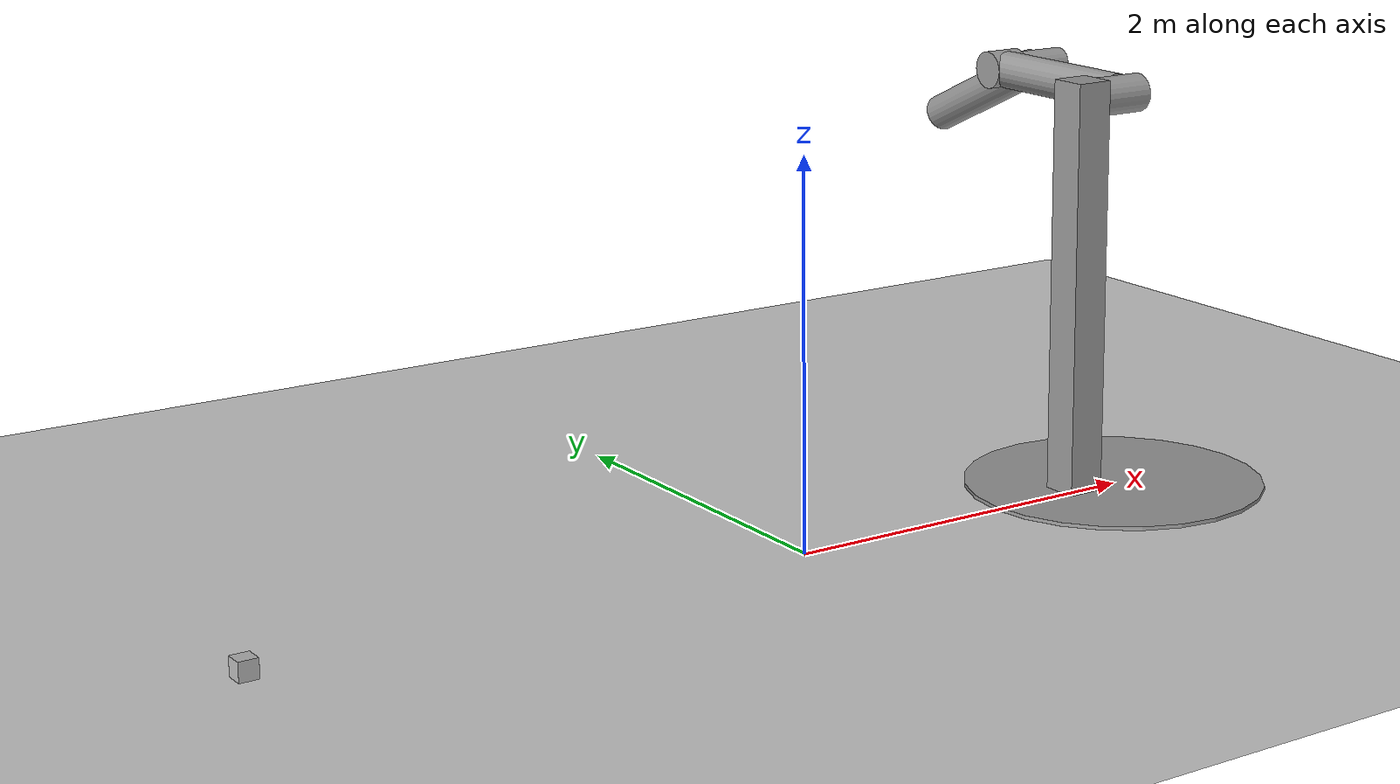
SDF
<sdf version="1.5">
 <world name="default">
  <light name="sun" type="directional">
   <pose>0 0 10 0 -0 0</pose>
   <diffuse>0.8 0.8 0.8 1</diffuse>
   <specular>0.2 0.2 0.2 1</specular>
   <attenuation>
    <range>1000</range>
    <constant>0.9</constant>
    <linear>0.01</linear>
    <quadratic>0.001</quadratic>
   </attenuation>
   <direction>-0.5 0.1 -0.9</direction>
  </light>
  <model name="ground_plane">
   <static>1</static>
   <link name="link">
    <collision name="collision">
     <geometry><plane><normal>0 0 1</normal><size>100 100</size></plane></geometry>
     <surface><friction><ode><mu>100</mu><mu2>50</mu2></ode></friction></surface>
    </collision>
    <visual name="visual">
     <cast_shadows>0</cast_shadows>
     <geometry><plane><normal>0 0 1</normal><size>100 100</size></plane></geometry>
     <material>
      <script><uri>file://media/materials/scripts/gazebo.material</uri><name>Gazebo/Grey</name></script>
     </material>
    </visual>
    <velocity_decay><linear>0</linear><angular>0</angular></velocity_decay>
   </link>
  </model>
  <physics type="ode">
   <max_step_size>0.001</max_step_size>
   <real_time_factor>1</real_time_factor>
   <real_time_update_rate>1000</real_time_update_rate>
   <gravity>0 0 -9.8</gravity>
  </physics>
  <scene><ambient>0.4 0.4 0.4 1</ambient><background>0.7 0.7 0.7 1</background><shadows>1</shadows></scene>
  <spherical_coordinates>
   <surface_model>EARTH_WGS84</surface_model>
   <latitude_deg>0</latitude_deg>
   <longitude_deg>0</longitude_deg>
   <elevation>0</elevation>
   <heading_deg>0</heading_deg>
  </spherical_coordinates>
  <model name="camera">
   <link name="link">
    <pose>0.05 0.05 0.05 0 -0 0</pose>
    <inertial>
     <mass>0.1</mass>
     <inertia><ixx>1</ixx><ixy>0</ixy><ixz>0</ixz><iyy>1</iyy><iyz>0</iyz><izz>1</izz></inertia>
    </inertial>
    <collision name="collision"><geometry><box><size>0.1 0.1 0.1</size></box></geometry></collision>
    <visual name="visual"><geometry><box><size>0.1 0.1 0.1</size></box></geometry></visual>
    <sensor name="camera" type="camera">
     <camera name="__default__">
      <horizontal_fov>1.047</horizontal_fov>
      <image><width>320</width><height>240</height></image>
      <clip><near>0.1</near><far>100</far></clip>
     </camera>
     <always_on>1</always_on>
     <update_rate>30</update_rate>
     <visualize>1</visualize>
    </sensor>
    <velocity_decay><linear>0</linear><angular>0</angular></velocity_decay>
   </link>
   <pose>-3 0 0 0 -0 0</pose>
  </model>
  <model name="double_pendulum_with_base">
   <link name="base">
    <inertial>
     <mass>100</mass>
     <inertia><ixx>1</ixx><ixy>0</ixy><ixz>0</ixz><iyy>1</iyy><iyz>0</iyz><izz>1</izz></inertia>
    </inertial>
    <visual name="vis_plate_on_ground">
     <pose>0 0 0.01 0 -0 0</pose>
     <geometry><cylinder><radius>0.8</radius><length>0.02</length></cylinder></geometry>
     <material>
      <script><uri>file://media/materials/scripts/gazebo.material</uri><name>Gazebo/Grey</name></script>
     </material>
    </visual>
    <visual name="vis_pole">
     <pose>-0.275 0 1.1 0 -0 0</pose>
     <geometry><box><size>0.2 0.2 2.2</size></box></geometry>
     <material>
      <script><uri>file://media/materials/scripts/gazebo.material</uri><name>Gazebo/Grey</name></script>
     </material>
    </visual>
    <collision name="col_plate_on_ground">
     <pose>0 0 0.01 0 -0 0</pose>
     <geometry><cylinder><radius>0.8</radius><length>0.02</length></cylinder></geometry>
    </collision>
    <collision name="col_pole">
     <pose>-0.275 0 1.1 0 -0 0</pose>
     <geometry><box><size>0.2 0.2 2.2</size></box></geometry>
    </collision>
    <velocity_decay><linear>0</linear><angular>0</angular></velocity_decay>
   </link>
   <link name="upper_link">
    <pose>0 0 2.1 -1.5708 0 0</pose>
    <inertial>
     <pose>0 0 0.5 0 -0 0</pose>
     <inertia><ixx>1</ixx><ixy>0</ixy><ixz>0</ixz><iyy>1</iyy><iyz>0</iyz><izz>1</izz></inertia>
     <mass>1</mass>
    </inertial>
    <visual name="vis_upper_joint">
     <pose>-0.05 0 0 3.14159 1.57079 3.14159</pose>
     <geometry><cylinder><radius>0.1</radius><length>0.3</length></cylinder></geometry>
     <material>
      <script><uri>file://media/materials/scripts/gazebo.material</uri><name>Gazebo/Grey</name></script>
     </material>
    </visual>
    <visual name="vis_lower_joint">
     <pose>0 0 1 3.14159 1.57079 3.14159</pose>
     <geometry><cylinder><radius>0.1</radius><length>0.2</length></cylinder></geometry>
     <material>
      <script><uri>file://media/materials/scripts/gazebo.material</uri><name>Gazebo/Grey</name></script>
     </material>
    </visual>
    <visual name="vis_cylinder">
     <pose>0 0 0.5 0 -0 0</pose>
     <geometry><cylinder><radius>0.1</radius><length>0.9</length></cylinder></geometry>
     <material>
      <script><uri>file://media/materials/scripts/gazebo.material</uri><name>Gazebo/Grey</name></script>
     </material>
    </visual>
    <collision name="col_upper_joint">
     <pose>-0.05 0 0 3.14159 1.57079 3.14159</pose>
     <geometry><cylinder><radius>0.1</radius><length>0.3</length></cylinder></geometry>
    </collision>
    <collision name="col_lower_joint">
     <pose>0 0 1 3.14159 1.57079 3.14159</pose>
     <geometry><cylinder><radius>0.1</radius><length>0.2</length></cylinder></geometry>
    </collision>
    <collision name="col_cylinder">
     <pose>0 0 0.5 0 -0 0</pose>
     <geometry><cylinder><radius>0.1</radius><length>0.9</length></cylinder></geometry>
    </collision>
    <velocity_decay><linear>0</linear><angular>0</angular></velocity_decay>
   </link>
   <link name="lower_link">
    <pose>0.25 1 2.1 -2 0 0</pose>
    <inertial>
     <pose>0 0 0.5 0 -0 0</pose>
     <inertia><ixx>1</ixx><ixy>0</ixy><ixz>0</ixz><iyy>1</iyy><iyz>0</iyz><izz>1</izz></inertia>
     <mass>1</mass>
    </inertial>
    <visual name="vis_lower_joint">
     <pose>0 0 0 3.14159 1.57079 3.14159</pose>
     <geometry><cylinder><radius>0.08</radius><length>0.3</length></cylinder></geometry>
     <material>
      <script><uri>file://media/materials/scripts/gazebo.material</uri><name>Gazebo/Grey</name></script>
     </material>
    </visual>
    <visual name="vis_cylinder">
     <pose>0 0 0.5 0 -0 0</pose>
     <geometry><cylinder><radius>0.1</radius><length>0.9</length></cylinder></geometry>
     <material>
      <script><uri>file://media/materials/scripts/gazebo.material</uri><name>Gazebo/Grey</name></script>
     </material>
    </visual>
    <collision name="col_lower_joint">
     <pose>0 0 0 3.14159 1.57079 3.14159</pose>
     <geometry><cylinder><radius>0.08</radius><length>0.3</length></cylinder></geometry>
    </collision>
    <collision name="col_cylinder">
     <pose>0 0 0.5 0 -0 0</pose>
     <geometry><cylinder><radius>0.1</radius><length>0.9</length></cylinder></geometry>
    </collision>
    <velocity_decay><linear>0</linear><angular>0</angular></velocity_decay>
   </link>
   <joint name="upper_joint" type="revolute">
    <parent>base</parent>
    <child>upper_link</child>
    <axis>
     <xyz>1 0 0</xyz>
     <use_parent_model_frame>1</use_parent_model_frame>
     <limit><lower>-1e+16</lower><upper>1e+16</upper></limit>
     <dynamics><spring_reference>0</spring_reference><spring_stiffness>0</spring_stiffness></dynamics>
    </axis>
   </joint>
   <joint name="lower_joint" type="revolute">
    <parent>upper_link</parent>
    <child>lower_link</child>
    <axis>
     <xyz>1 0 0</xyz>
     <use_parent_model_frame>1</use_parent_model_frame>
     <limit><lower>-1e+16</lower><upper>1e+16</upper></limit>
     <dynamics><spring_reference>0</spring_reference><spring_stiffness>0</spring_stiffness></dynamics>
    </axis>
   </joint>
   <pose>2 0 0 0 -0 0</pose>
  </model>
 </world>
</sdf>
